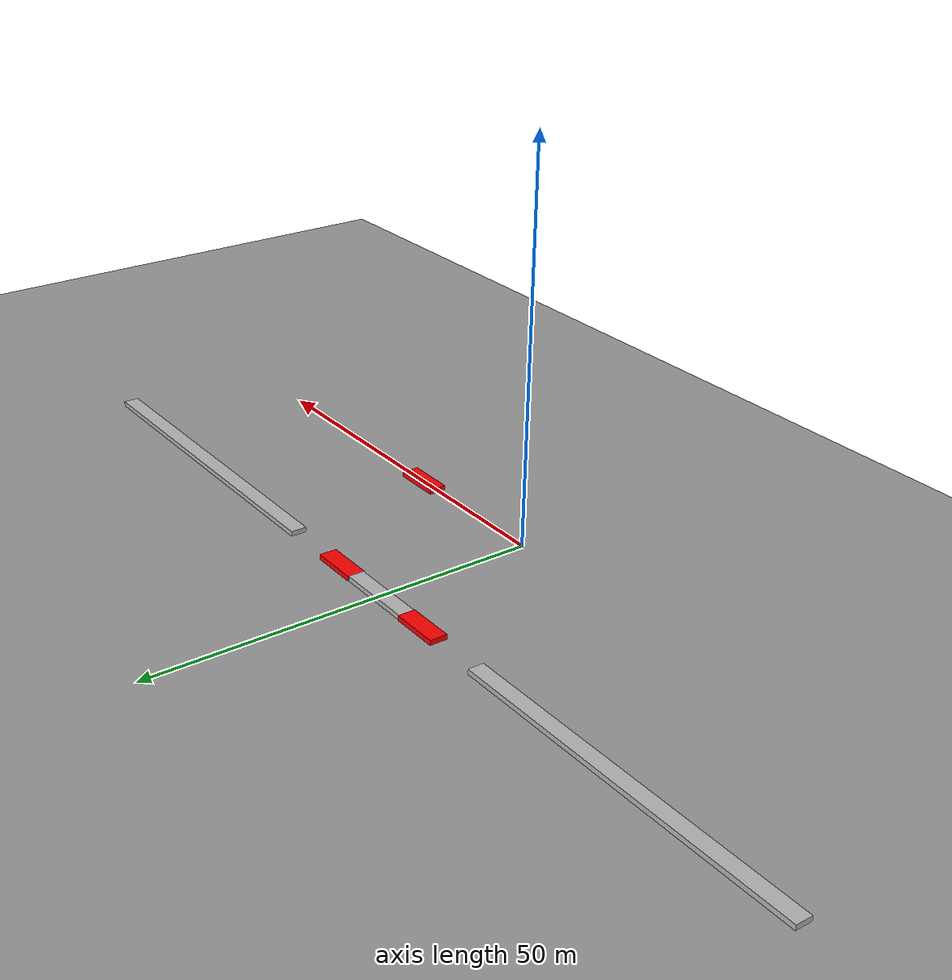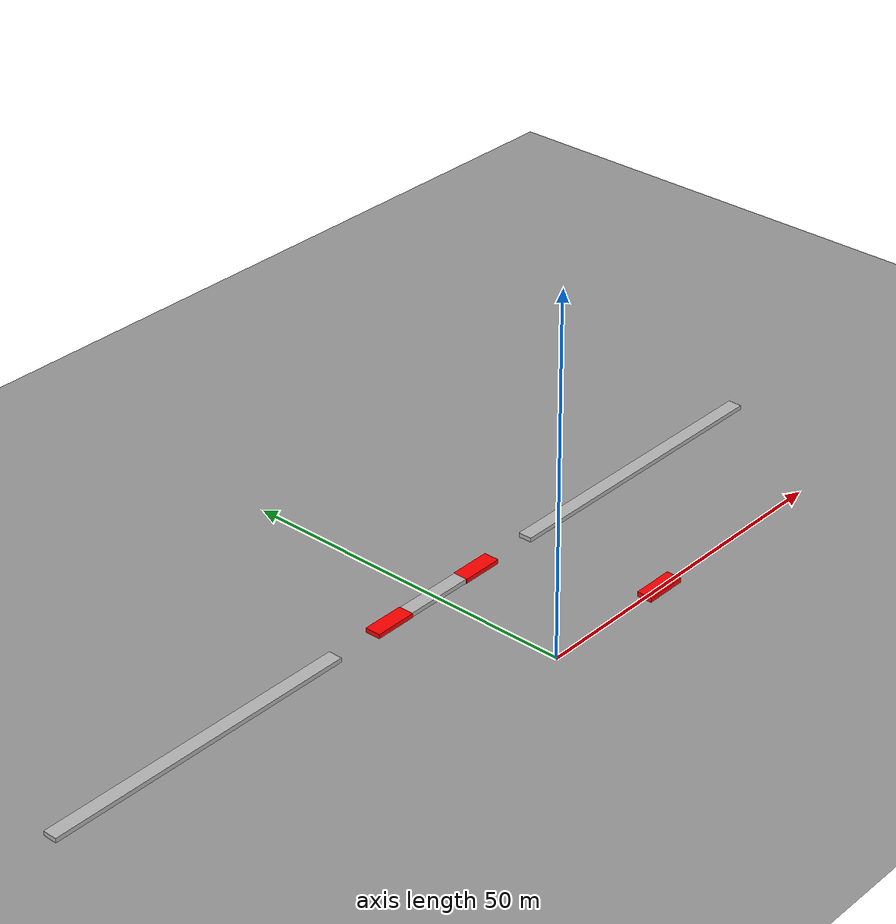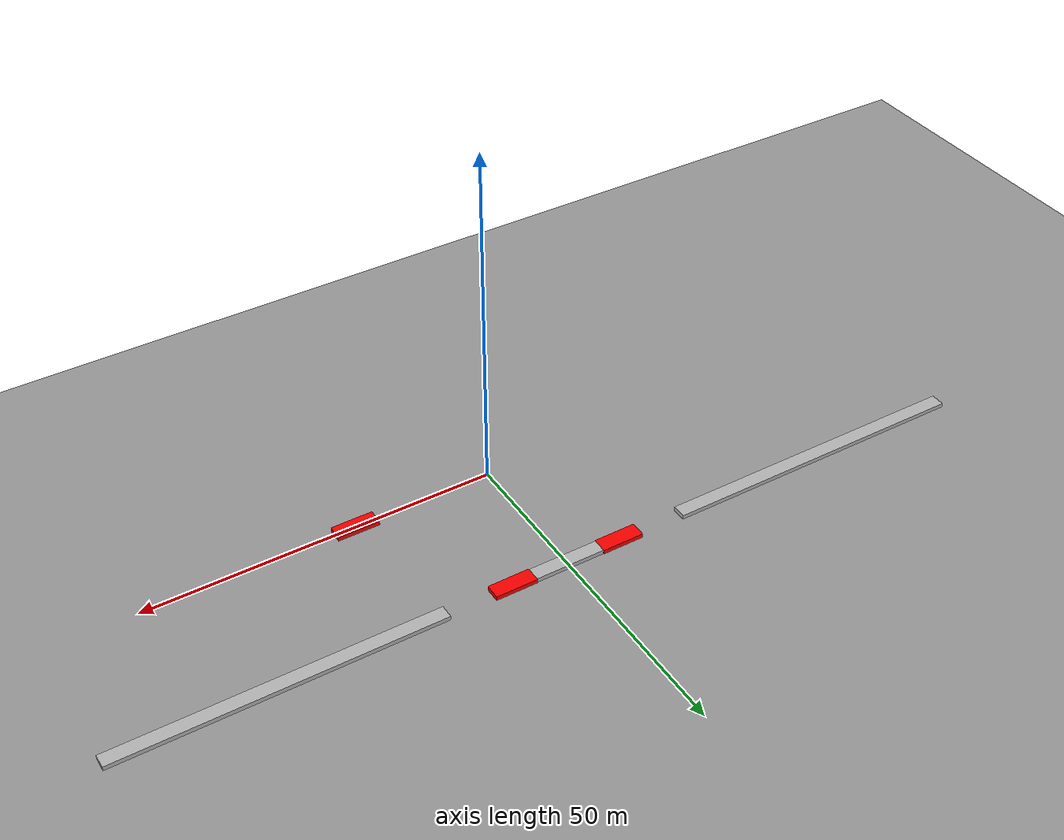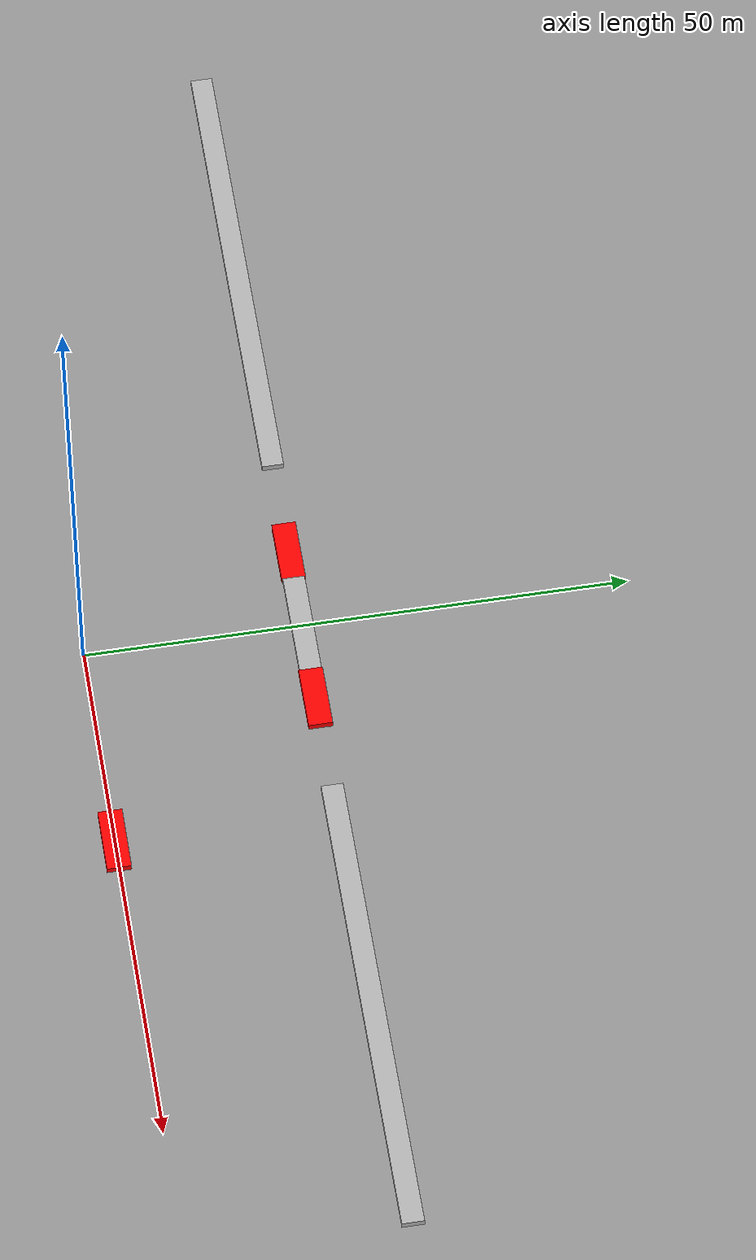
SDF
<sdf version="1.9">
 <world name="default">
  <physics type="ode">
   <max_step_size>0.01</max_step_size>
   <real_time_update_rate>60</real_time_update_rate>
  </physics>
  <model name="ground_plane">
   <static>true</static>
   <link name="link">
    <collision name="collision">
     <geometry><plane><normal>0 0 1</normal><size>100 100</size></plane></geometry>
     <surface><contact><collide_without_contact_bitmask>0x01</collide_without_contact_bitmask></contact></surface>
    </collision>
    <visual name="visual">
     <geometry><plane><normal>0 0 1</normal><size>100 100</size></plane></geometry>
     <material><ambient>0.6 0.6 0.6 1</ambient><diffuse>0.6 0.6 0.6 1</diffuse></material>
    </visual>
   </link>
  </model>
  <model name="b1_wall_center">
   <pose>0 20 0 0 0 0</pose>
   <link name="l"><visual name="v"><geometry><box><size>10 2 1</size></box></geometry></visual></link>
  </model>
  <model name="b1_wall_left">
   <pose>-40 20 0 0 0 0</pose>
   <link name="l"><visual name="v"><geometry><box><size>45 2 1</size></box></geometry></visual></link>
  </model>
  <model name="b1_wall_right">
   <pose>40 20 0 0 0 0</pose>
   <link name="l"><visual name="v"><geometry><box><size>45 2 1</size></box></geometry></visual></link>
  </model>
  <model name="b1_trap_a">
   <pose>8 20 0 0 0 0</pose>
   <link name="link">
    <visual name="v">
     <geometry><box><size>6 2.2 1</size></box></geometry>
     <material><ambient>1 0 0 1</ambient></material>
    </visual>
   </link>
   <motion><direction>1 0 0</direction><amplitude>6.0</amplitude><speed>8.0</speed></motion>
  </model>
  <model name="b1_trap_b">
   <pose>-8 20 0 0 0 0</pose>
   <link name="link">
    <visual name="v">
     <geometry><box><size>6 2.2 1</size></box></geometry>
     <material><ambient>1 0 0 1</ambient></material>
    </visual>
   </link>
   <motion><direction>-1 0 0</direction><amplitude>6.0</amplitude><speed>8.0</speed></motion>
  </model>
  <model name="b2_trap_a">
   <pose>20 0 0 0 0 0</pose>
   <link name="link">
    <visual name="v">
     <geometry><box><size>6 2.2 1</size></box></geometry>
     <material><ambient>1 0 0 1</ambient></material>
    </visual>
   </link>
   <motion><direction>1 0 0</direction><amplitude>5.0</amplitude><speed>10.0</speed></motion>
  </model>
 </world>
</sdf>
